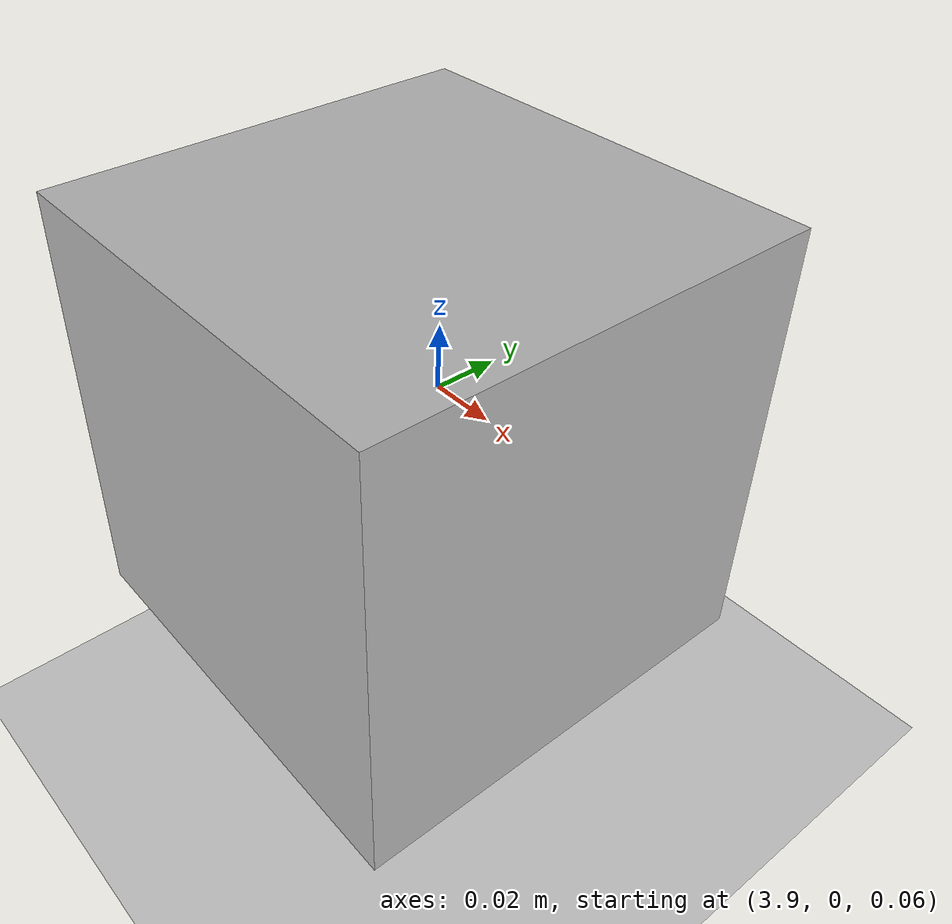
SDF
<?xml version="1.0" ?>

<!--
bridge: https://github.com/gazebosim/ros_gz/tree/ros2/ros_gz_bridge
https://github.com/gazebosim/gz-sim/blob/gz-sim8/test/worlds/imu.sdf
 -->

<sdf version="1.6">
  <world name="imu_sensor">
    <physics name="1ms" type="ignored">
            <max_step_size>0.001</max_step_size>
            <real_time_factor>1.0</real_time_factor>
        </physics>
        <plugin
            filename="gz-sim-physics-system"
            name="gz::sim::systems::Physics">
        </plugin>
        <plugin
            filename="gz-sim-user-commands-system"
            name="gz::sim::systems::UserCommands">
        </plugin>
        <plugin
            filename="gz-sim-scene-broadcaster-system"
            name="gz::sim::systems::SceneBroadcaster">
        </plugin>

        <plugin filename="gz-sim-imu-system"
            name="gz::sim::systems::Imu">
        </plugin>

        <light type="directional" name="sun">
            <cast_shadows>true</cast_shadows>
            <pose>0 0 10 0 0 0</pose>
            <diffuse>0.8 0.8 0.8 1</diffuse>
            <specular>0.2 0.2 0.2 1</specular>
            <attenuation>
                <range>1000</range>
                <constant>0.9</constant>
                <linear>0.01</linear>
                <quadratic>0.001</quadratic>
            </attenuation>
            <direction>-0.5 0.1 -0.9</direction>
        </light>

        <model name="ground_plane">
            <static>true</static>
            <link name="link">
                <collision name="collision">
                    <geometry>
                        <plane>
                            <normal>0 0 1</normal>
                        </plane>
                    </geometry>
                </collision>
                <visual name="visual">
                    <geometry>
                        <plane>
                            <normal>0 0 1</normal>
                            <size>100 100</size>
                        </plane>
                    </geometry>
                    <material>
                        <ambient>0.8 0.8 0.8 1</ambient>
                        <diffuse>0.8 0.8 0.8 1</diffuse>
                        <specular>0.8 0.8 0.8 1</specular>
                    </material>
                </visual>
            </link>
        </model>

    <model name="imu_model">
      <pose>4 0 0.05 0 0.0 3.14</pose>
      <link name="link">
        <pose>0.05 0.05 0.05 0 0 0</pose>
        <inertial>
          <mass>0.1</mass>
          <inertia>
            <ixx>0.000166667</ixx>
            <iyy>0.000166667</iyy>
            <izz>0.000166667</izz>
          </inertia>
        </inertial>
        <collision name="collision">
          <geometry>
            <box>
              <size>0.1 0.1 0.1</size>
            </box>
          </geometry>
        </collision>
        <visual name="visual">
          <geometry>
            <box>
              <size>0.1 0.1 0.1</size>
            </box>
          </geometry>
        </visual>
        <sensor name="imu_sensor" type="imu">
          <always_on>1</always_on>
          <update_rate>50</update_rate>
          <imu>
            <enable_orientation>0</enable_orientation>
            <angular_velocity>
              <x>
                <noise type="gaussian">
                  <mean>0</mean>
                  <stddev>0.009</stddev>
                  <bias_mean>0.00075</bias_mean>
                  <bias_stddev>0.005</bias_stddev>
                  <dynamic_bias_stddev>0.00002</dynamic_bias_stddev>
                  <dynamic_bias_correlation_time>400.0</dynamic_bias_correlation_time>
                  <precision>0.00025</precision>
                </noise>
              </x>
              <y>
                <noise type="gaussian">
                  <mean>0</mean>
                  <stddev>0.009</stddev>
                  <bias_mean>0.00075</bias_mean>
                  <bias_stddev>0.005</bias_stddev>
                  <dynamic_bias_stddev>0.00002</dynamic_bias_stddev>
                  <dynamic_bias_correlation_time>400.0</dynamic_bias_correlation_time>
                  <precision>0.00025</precision>
                </noise>
              </y>
              <z>
                <noise type="gaussian">
                  <mean>0</mean>
                  <stddev>0.009</stddev>
                  <bias_mean>0.00075</bias_mean>
                  <bias_stddev>0.005</bias_stddev>
                  <dynamic_bias_stddev>0.00002</dynamic_bias_stddev>
                  <dynamic_bias_correlation_time>400.0</dynamic_bias_correlation_time>
                  <precision>0.00025</precision>
                </noise>
              </z>
            </angular_velocity>
            <linear_acceleration>
              <x>
                <noise type="gaussian">
                  <mean>0</mean>
                  <stddev>0.021</stddev>
                  <bias_mean>0.05</bias_mean>
                  <bias_stddev>0.0075</bias_stddev>
                  <dynamic_bias_stddev>0.000375</dynamic_bias_stddev>
                  <dynamic_bias_correlation_time>175.0</dynamic_bias_correlation_time>
                  <precision>0.005</precision>
                </noise>
              </x>
              <y>
                <noise type="gaussian">
                  <mean>0</mean>
                  <stddev>0.021</stddev>
                  <bias_mean>0.05</bias_mean>
                  <bias_stddev>0.0075</bias_stddev>
                  <dynamic_bias_stddev>0.000375</dynamic_bias_stddev>
                  <dynamic_bias_correlation_time>175.0</dynamic_bias_correlation_time>
                  <precision>0.005</precision>
                </noise>
              </y>
              <z>
                <noise type="gaussian">
                  <mean>0</mean>
                  <stddev>0.021</stddev>
                  <bias_mean>0.05</bias_mean>
                  <bias_stddev>0.0075</bias_stddev>
                  <dynamic_bias_stddev>0.000375</dynamic_bias_stddev>
                  <dynamic_bias_correlation_time>175.0</dynamic_bias_correlation_time>
                  <precision>0.005</precision>
                </noise>
              </z>
            </linear_acceleration>
          </imu>
      </sensor>
      </link>
    </model>

  </world>
</sdf>
